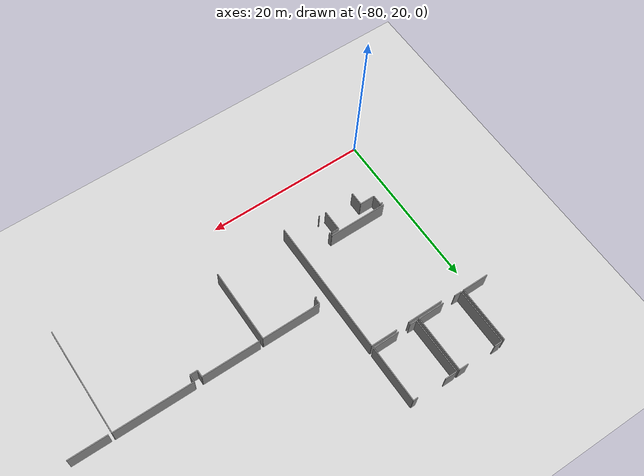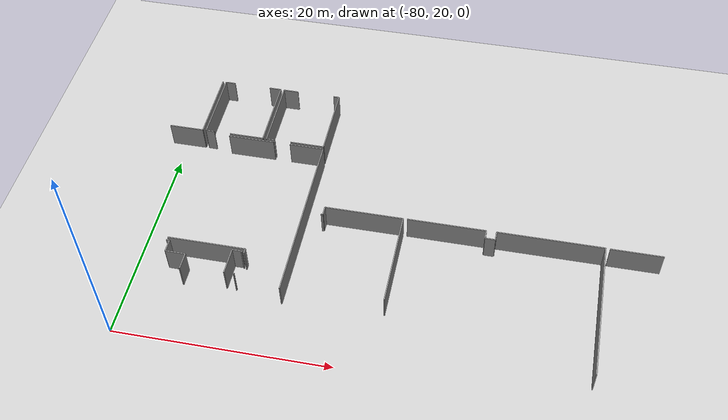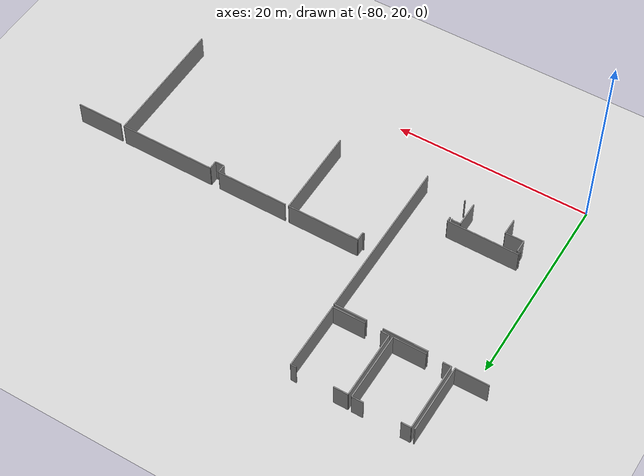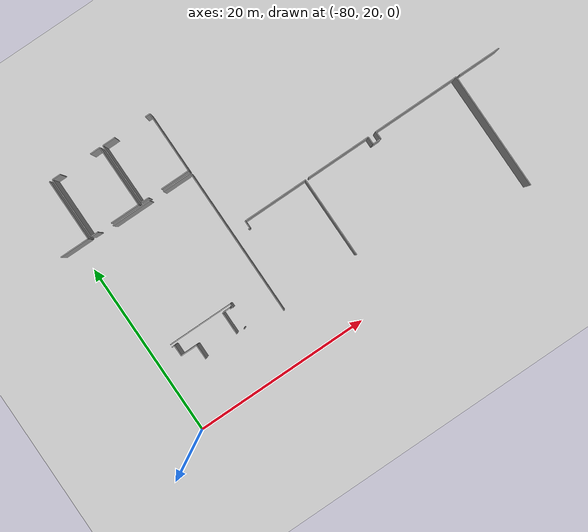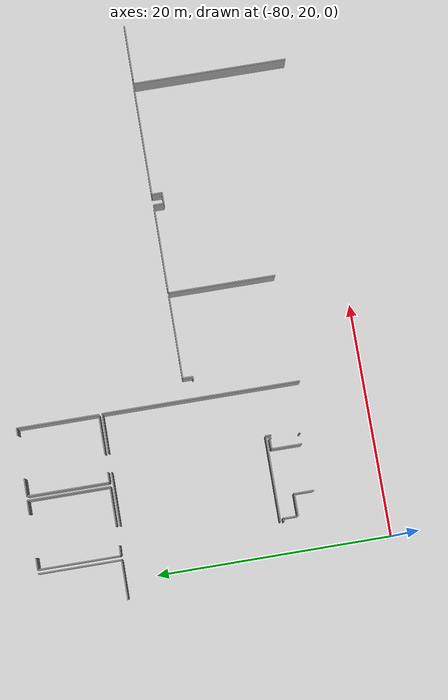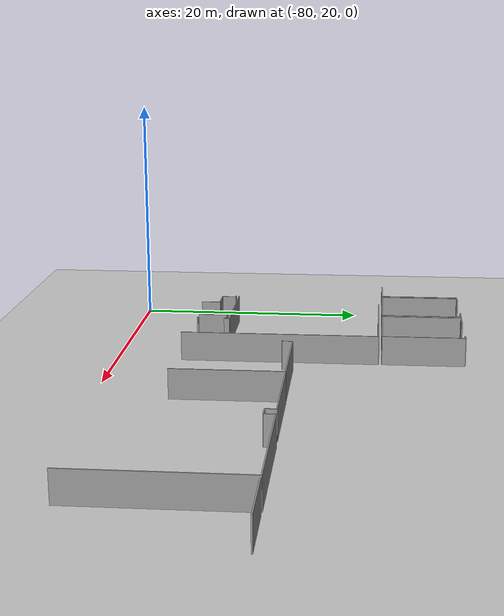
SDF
<sdf version="1.6">
 <world name="default">
  <model name="ground_plane">
   <static>1</static>
   <link name="link">
    <collision name="collision">
     <geometry><plane><normal>0 0 1</normal><size>100 100</size></plane></geometry>
     <surface><friction><ode><mu>100</mu><mu2>50</mu2></ode></friction></surface>
    </collision>
    <visual name="visual">
     <cast_shadows>0</cast_shadows>
     <geometry><plane><normal>0 0 1</normal><size>100 100</size></plane></geometry>
     <material>
      <script><uri>file://media/materials/scripts/gazebo.material</uri><name>Gazebo/Grey</name></script>
     </material>
    </visual>
   </link>
  </model>
  <model name="0510035740_A_40_1_103">
   <static>1</static>
   <link name="Wall_10">
    <collision name="Wall_10_Collision">
     <geometry><box><size>6.99428310375 0.1 2.5</size></box></geometry>
     <pose>3.49714155187 0 1.25 0 0 0</pose>
    </collision>
    <visual name="Wall_10_Visual">
     <pose>3.49714155187 0 1.25 0 0 0</pose>
     <geometry><box><size>6.99428310375 0.1 2.5</size></box></geometry>
     <material>
      <script><uri>file://media/materials/scripts/gazebo.material</uri><name>Gazebo/Grey</name></script>
      <ambient>1 1 1 1</ambient>
     </material>
    </visual>
    <pose>15.7024929728 -0.0164971478969 0 0 0 -1.57079632679</pose>
   </link>
   <link name="Wall_11">
    <collision name="Wall_11_Collision">
     <geometry><box><size>3.33369288656 0.1 2.5</size></box></geometry>
     <pose>1.66684644328 0 1.25 0 0 0</pose>
    </collision>
    <visual name="Wall_11_Visual">
     <pose>1.66684644328 0 1.25 0 0 0</pose>
     <geometry><box><size>3.33369288656 0.1 2.5</size></box></geometry>
     <material>
      <script><uri>file://media/materials/scripts/gazebo.material</uri><name>Gazebo/Grey</name></script>
      <ambient>1 1 1 1</ambient>
     </material>
    </visual>
    <pose>15.7024929728 -7.01078025164 0 0 0 3.14159265359</pose>
   </link>
   <link name="Wall_13">
    <collision name="Wall_13_Collision">
     <geometry><box><size>6.97474032855 0.1 2.5</size></box></geometry>
     <pose>3.48737016427 0 1.25 0 0 0</pose>
    </collision>
    <visual name="Wall_13_Visual">
     <pose>3.48737016427 0 1.25 0 0 0</pose>
     <geometry><box><size>6.97474032855 0.1 2.5</size></box></geometry>
     <material>
      <script><uri>file://media/materials/scripts/gazebo.material</uri><name>Gazebo/Grey</name></script>
      <ambient>1 1 1 1</ambient>
     </material>
    </visual>
    <pose>16.0415728127 -6.99504451057 0 0 0 1.57079632679</pose>
   </link>
   <link name="Wall_14">
    <collision name="Wall_14_Collision">
     <geometry><box><size>0.975108341846 0.1 2.5</size></box></geometry>
     <pose>0.487554170923 0 1.25 0 0 0</pose>
    </collision>
    <visual name="Wall_14_Visual">
     <pose>0.487554170923 0 1.25 0 0 0</pose>
     <geometry><box><size>0.975108341846 0.1 2.5</size></box></geometry>
     <material>
      <script><uri>file://media/materials/scripts/gazebo.material</uri><name>Gazebo/Grey</name></script>
      <ambient>1 1 1 1</ambient>
     </material>
    </visual>
    <pose>16.0415728127 -0.020304182027 0 0 0 0.0</pose>
   </link>
   <link name="Wall_15">
    <collision name="Wall_15_Collision">
     <geometry><box><size>1.15429274823 0.1 2.5</size></box></geometry>
     <pose>0.577146374117 0 1.25 0 0 0</pose>
    </collision>
    <visual name="Wall_15_Visual">
     <pose>0.577146374117 0 1.25 0 0 0</pose>
     <geometry><box><size>1.15429274823 0.1 2.5</size></box></geometry>
     <material>
      <script><uri>file://media/materials/scripts/gazebo.material</uri><name>Gazebo/Grey</name></script>
      <ambient>1 1 1 1</ambient>
     </material>
    </visual>
    <pose>20.6800631968 -0.020304182027 0 0 0 0.0</pose>
   </link>
   <link name="Wall_16">
    <collision name="Wall_16_Collision">
     <geometry><box><size>6.99428310375 0.1 2.5</size></box></geometry>
     <pose>3.49714155187 0 1.25 0 0 0</pose>
    </collision>
    <visual name="Wall_16_Visual">
     <pose>3.49714155187 0 1.25 0 0 0</pose>
     <geometry><box><size>6.99428310375 0.1 2.5</size></box></geometry>
     <material>
      <script><uri>file://media/materials/scripts/gazebo.material</uri><name>Gazebo/Grey</name></script>
      <ambient>1 1 1 1</ambient>
     </material>
    </visual>
    <pose>21.834355945 -0.020304182027 0 0 0 -1.57079632679</pose>
   </link>
   <link name="Wall_17">
    <collision name="Wall_17_Collision">
     <geometry><box><size>3.32760163195 0.1 2.5</size></box></geometry>
     <pose>1.66380081597 0 1.25 0 0 0</pose>
    </collision>
    <visual name="Wall_17_Visual">
     <pose>1.66380081597 0 1.25 0 0 0</pose>
     <geometry><box><size>3.32760163195 0.1 2.5</size></box></geometry>
     <material>
      <script><uri>file://media/materials/scripts/gazebo.material</uri><name>Gazebo/Grey</name></script>
      <ambient>1 1 1 1</ambient>
     </material>
    </visual>
    <pose>21.834355945 -7.01458728578 0 0 0 3.14159265359</pose>
   </link>
   <link name="Wall_18">
    <collision name="Wall_18_Collision">
     <geometry><box><size>0.85934294708 0.1 2.5</size></box></geometry>
     <pose>0.42967147354 0 1.25 0 0 0</pose>
    </collision>
    <visual name="Wall_18_Visual">
     <pose>0.42967147354 0 1.25 0 0 0</pose>
     <geometry><box><size>0.85934294708 0.1 2.5</size></box></geometry>
     <material>
      <script><uri>file://media/materials/scripts/gazebo.material</uri><name>Gazebo/Grey</name></script>
      <ambient>1 1 1 1</ambient>
     </material>
    </visual>
    <pose>16.9006935147 -7.01458728578 0 0 0 3.11884916082</pose>
   </link>
   <link name="Wall_19">
    <collision name="Wall_19_Collision">
     <geometry><box><size>6.96636485346 0.1 2.5</size></box></geometry>
     <pose>3.48318242673 0 1.25 0 0 0</pose>
    </collision>
    <visual name="Wall_19_Visual">
     <pose>3.48318242673 0 1.25 0 0 0</pose>
     <geometry><box><size>6.96636485346 0.1 2.5</size></box></geometry>
     <material>
      <script><uri>file://media/materials/scripts/gazebo.material</uri><name>Gazebo/Grey</name></script>
      <ambient>1 1 1 1</ambient>
     </material>
    </visual>
    <pose>22.1957703851 -7.00468899704 0 0 0 1.57079632679</pose>
   </link>
   <link name="Wall_20">
    <collision name="Wall_20_Collision">
     <geometry><box><size>1.47433741743 0.1 2.5</size></box></geometry>
     <pose>0.737168708717 0 1.25 0 0 0</pose>
    </collision>
    <visual name="Wall_20_Visual">
     <pose>0.737168708717 0 1.25 0 0 0</pose>
     <geometry><box><size>1.47433741743 0.1 2.5</size></box></geometry>
     <material>
      <script><uri>file://media/materials/scripts/gazebo.material</uri><name>Gazebo/Grey</name></script>
      <ambient>1 1 1 1</ambient>
     </material>
    </visual>
    <pose>22.1957703851 -0.0383241435759 0 0 0 0.0</pose>
   </link>
   <link name="Wall_21">
    <collision name="Wall_21_Collision">
     <geometry><box><size>0.564710062626 0.1 2.5</size></box></geometry>
     <pose>0.282355031313 0 1.25 0 0 0</pose>
    </collision>
    <visual name="Wall_21_Visual">
     <pose>0.282355031313 0 1.25 0 0 0</pose>
     <geometry><box><size>0.564710062626 0.1 2.5</size></box></geometry>
     <material>
      <script><uri>file://media/materials/scripts/gazebo.material</uri><name>Gazebo/Grey</name></script>
      <ambient>1 1 1 1</ambient>
     </material>
    </visual>
    <pose>27.3776514406 -0.0383241435759 0 0 0 0.0</pose>
   </link>
   <link name="Wall_22">
    <collision name="Wall_22_Collision">
     <geometry><box><size>6.98438481501 0.1 2.5</size></box></geometry>
     <pose>3.4921924075 0 1.25 0 0 0</pose>
    </collision>
    <visual name="Wall_22_Visual">
     <pose>3.4921924075 0 1.25 0 0 0</pose>
     <geometry><box><size>6.98438481501 0.1 2.5</size></box></geometry>
     <material>
      <script><uri>file://media/materials/scripts/gazebo.material</uri><name>Gazebo/Grey</name></script>
      <ambient>1 1 1 1</ambient>
     </material>
    </visual>
    <pose>27.9423615033 -0.0383241435759 0 0 0 -1.57079632679</pose>
   </link>
   <link name="Wall_23">
    <collision name="Wall_23_Collision">
     <geometry><box><size>3.30882026357 0.1 2.5</size></box></geometry>
     <pose>1.65441013179 0 1.25 0 0 0</pose>
    </collision>
    <visual name="Wall_23_Visual">
     <pose>1.65441013179 0 1.25 0 0 0</pose>
     <geometry><box><size>3.30882026357 0.1 2.5</size></box></geometry>
     <material>
      <script><uri>file://media/materials/scripts/gazebo.material</uri><name>Gazebo/Grey</name></script>
      <ambient>1 1 1 1</ambient>
     </material>
    </visual>
    <pose>27.9423615033 -7.02270895859 0 0 0 3.14159265359</pose>
   </link>
   <link name="Wall_24">
    <collision name="Wall_24_Collision">
     <geometry><box><size>0.869713296988 0.1 2.5</size></box></geometry>
     <pose>0.434856648494 0 1.25 0 0 0</pose>
    </collision>
    <visual name="Wall_24_Visual">
     <pose>0.434856648494 0 1.25 0 0 0</pose>
     <geometry><box><size>0.869713296988 0.1 2.5</size></box></geometry>
     <material>
      <script><uri>file://media/materials/scripts/gazebo.material</uri><name>Gazebo/Grey</name></script>
      <ambient>1 1 1 1</ambient>
     </material>
    </visual>
    <pose>23.0652969804 -7.02270895859 0 0 0 3.12087174341</pose>
   </link>
   <link name="Wall_49">
    <collision name="Wall_49_Collision">
     <geometry><box><size>0.307354555434 0.1 2.5</size></box></geometry>
     <pose>0.153677277717 0 1.25 0 0 0</pose>
    </collision>
    <visual name="Wall_49_Visual">
     <pose>0.153677277717 0 1.25 0 0 0</pose>
     <geometry><box><size>0.307354555434 0.1 2.5</size></box></geometry>
     <material>
      <script><uri>file://media/materials/scripts/gazebo.material</uri><name>Gazebo/Grey</name></script>
      <ambient>1 1 1 1</ambient>
     </material>
    </visual>
    <pose>16.5557762225 -20.8417352462 0 0 0 0.0</pose>
   </link>
   <link name="Wall_50">
    <collision name="Wall_50_Collision">
     <geometry><box><size>1.23576327862 0.1 2.5</size></box></geometry>
     <pose>0.617881639309 0 1.25 0 0 0</pose>
    </collision>
    <visual name="Wall_50_Visual">
     <pose>0.617881639309 0 1.25 0 0 0</pose>
     <geometry><box><size>1.23576327862 0.1 2.5</size></box></geometry>
     <material>
      <script><uri>file://media/materials/scripts/gazebo.material</uri><name>Gazebo/Grey</name></script>
      <ambient>1 1 1 1</ambient>
     </material>
    </visual>
    <pose>16.863130778 -20.8417352462 0 0 0 -1.57079632679</pose>
   </link>
   <link name="Wall_51">
    <collision name="Wall_51_Collision">
     <geometry><box><size>1.86950756014 0.1 2.5</size></box></geometry>
     <pose>0.934753780068 0 1.25 0 0 0</pose>
    </collision>
    <visual name="Wall_51_Visual">
     <pose>0.934753780068 0 1.25 0 0 0</pose>
     <geometry><box><size>1.86950756014 0.1 2.5</size></box></geometry>
     <material>
      <script><uri>file://media/materials/scripts/gazebo.material</uri><name>Gazebo/Grey</name></script>
      <ambient>1 1 1 1</ambient>
     </material>
    </visual>
    <pose>16.863130778 -22.0774985248 0 0 0 0.0</pose>
   </link>
   <link name="Wall_52">
    <collision name="Wall_52_Collision">
     <geometry><box><size>1.65631364885 0.1 2.5</size></box></geometry>
     <pose>0.828156824426 0 1.25 0 0 0</pose>
    </collision>
    <visual name="Wall_52_Visual">
     <pose>0.828156824426 0 1.25 0 0 0</pose>
     <geometry><box><size>1.65631364885 0.1 2.5</size></box></geometry>
     <material>
      <script><uri>file://media/materials/scripts/gazebo.material</uri><name>Gazebo/Grey</name></script>
      <ambient>1 1 1 1</ambient>
     </material>
    </visual>
    <pose>18.7326383381 -22.0774985248 0 0 0 -1.57079632679</pose>
   </link>
   <link name="Wall_61">
    <collision name="Wall_61_Collision">
     <geometry><box><size>2.56822522414 0.1 2.5</size></box></geometry>
     <pose>1.28411261207 0 1.25 0 0 0</pose>
    </collision>
    <visual name="Wall_61_Visual">
     <pose>1.28411261207 0 1.25 0 0 0</pose>
     <geometry><box><size>2.56822522414 0.1 2.5</size></box></geometry>
     <material>
      <script><uri>file://media/materials/scripts/gazebo.material</uri><name>Gazebo/Grey</name></script>
      <ambient>1 1 1 1</ambient>
     </material>
    </visual>
    <pose>22.7216486996 -23.414275109 0 0 0 1.57079632679</pose>
   </link>
   <link name="Wall_62">
    <collision name="Wall_62_Collision">
     <geometry><box><size>0.902013286549 0.1 2.5</size></box></geometry>
     <pose>0.451006643275 0 1.25 0 0 0</pose>
    </collision>
    <visual name="Wall_62_Visual">
     <pose>0.451006643275 0 1.25 0 0 0</pose>
     <geometry><box><size>0.902013286549 0.1 2.5</size></box></geometry>
     <material>
      <script><uri>file://media/materials/scripts/gazebo.material</uri><name>Gazebo/Grey</name></script>
      <ambient>1 1 1 1</ambient>
     </material>
    </visual>
    <pose>22.7216486996 -20.8460498848 0 0 0 0.0</pose>
   </link>
   <link name="Wall_63">
    <collision name="Wall_63_Collision">
     <geometry><box><size>0.137053228682 0.1 2.5</size></box></geometry>
     <pose>0.0685266143411 0 1.25 0 0 0</pose>
    </collision>
    <visual name="Wall_63_Visual">
     <pose>0.0685266143411 0 1.25 0 0 0</pose>
     <geometry><box><size>0.137053228682 0.1 2.5</size></box></geometry>
     <material>
      <script><uri>file://media/materials/scripts/gazebo.material</uri><name>Gazebo/Grey</name></script>
      <ambient>1 1 1 1</ambient>
     </material>
    </visual>
    <pose>23.6236619861 -20.8460498848 0 0 0 -1.57079632679</pose>
   </link>
   <link name="Wall_64">
    <collision name="Wall_64_Collision">
     <geometry><box><size>0.109642582946 0.1 2.5</size></box></geometry>
     <pose>0.0548212914729 0 1.25 0 0 0</pose>
    </collision>
    <visual name="Wall_64_Visual">
     <pose>0.0548212914729 0 1.25 0 0 0</pose>
     <geometry><box><size>0.109642582946 0.1 2.5</size></box></geometry>
     <material>
      <script><uri>file://media/materials/scripts/gazebo.material</uri><name>Gazebo/Grey</name></script>
      <ambient>1 1 1 1</ambient>
     </material>
    </visual>
    <pose>23.6236619861 -23.3432104719 0 0 0 -1.57079632679</pose>
   </link>
   <link name="Wall_72">
    <collision name="Wall_72_Collision">
     <geometry><box><size>4.50499038724 0.1 2.5</size></box></geometry>
     <pose>2.25249519362 0 1.25 0 0 0</pose>
    </collision>
    <visual name="Wall_72_Visual">
     <pose>2.25249519362 0 1.25 0 0 0</pose>
     <geometry><box><size>4.50499038724 0.1 2.5</size></box></geometry>
     <material>
      <script><uri>file://media/materials/scripts/gazebo.material</uri><name>Gazebo/Grey</name></script>
      <ambient>1 1 1 1</ambient>
     </material>
    </visual>
    <pose>18.5103075449 -7.31991142301 0 0 0 0.0</pose>
   </link>
   <link name="Wall_73">
    <collision name="Wall_73_Collision">
     <geometry><box><size>3.32303319099 0.1 2.5</size></box></geometry>
     <pose>1.6615165955 0 1.25 0 0 0</pose>
    </collision>
    <visual name="Wall_73_Visual">
     <pose>1.6615165955 0 1.25 0 0 0</pose>
     <geometry><box><size>3.32303319099 0.1 2.5</size></box></geometry>
     <material>
      <script><uri>file://media/materials/scripts/gazebo.material</uri><name>Gazebo/Grey</name></script>
      <ambient>1 1 1 1</ambient>
     </material>
    </visual>
    <pose>24.6497845853 -7.31991142301 0 0 0 0.0</pose>
   </link>
   <link name="Wall_74">
    <collision name="Wall_74_Collision">
     <geometry><box><size>16.8374967482 0.1 2.5</size></box></geometry>
     <pose>8.41874837408 0 1.25 0 0 0</pose>
    </collision>
    <visual name="Wall_74_Visual">
     <pose>8.41874837408 0 1.25 0 0 0</pose>
     <geometry><box><size>16.8374967482 0.1 2.5</size></box></geometry>
     <material>
      <script><uri>file://media/materials/scripts/gazebo.material</uri><name>Gazebo/Grey</name></script>
      <ambient>1 1 1 1</ambient>
     </material>
    </visual>
    <pose>27.9728177763 -7.31991142301 0 0 0 -1.57079632679</pose>
   </link>
   <link name="Wall_84">
    <collision name="Wall_84_Collision">
     <geometry><box><size>0.4702956162 0.1 2.5</size></box></geometry>
     <pose>0.2351478081 0 1.25 0 0 0</pose>
    </collision>
    <visual name="Wall_84_Visual">
     <pose>0.2351478081 0 1.25 0 0 0</pose>
     <geometry><box><size>0.4702956162 0.1 2.5</size></box></geometry>
     <material>
      <script><uri>file://media/materials/scripts/gazebo.material</uri><name>Gazebo/Grey</name></script>
      <ambient>1 1 1 1</ambient>
     </material>
    </visual>
    <pose>23.8792408774 -21.0171126184 0 0 0 1.57079632679</pose>
   </link>
   <link name="Wall_85">
    <collision name="Wall_85_Collision">
     <geometry><box><size>7.29199317272 0.1 2.5</size></box></geometry>
     <pose>3.64599658636 0 1.25 0 0 0</pose>
    </collision>
    <visual name="Wall_85_Visual">
     <pose>3.64599658636 0 1.25 0 0 0</pose>
     <geometry><box><size>7.29199317272 0.1 2.5</size></box></geometry>
     <material>
      <script><uri>file://media/materials/scripts/gazebo.material</uri><name>Gazebo/Grey</name></script>
      <ambient>1 1 1 1</ambient>
     </material>
    </visual>
    <pose>23.8792408774 -20.5468170022 0 0 0 3.14159265359</pose>
   </link>
   <link name="Wall_121">
    <collision name="Wall_121_Collision">
     <geometry><box><size>0.184768056446 0.1 2.5</size></box></geometry>
     <pose>0.0923840282228 0 1.25 0 0 0</pose>
    </collision>
    <visual name="Wall_121_Visual">
     <pose>0.0923840282228 0 1.25 0 0 0</pose>
     <geometry><box><size>0.184768056446 0.1 2.5</size></box></geometry>
     <material>
      <script><uri>file://media/materials/scripts/gazebo.material</uri><name>Gazebo/Grey</name></script>
      <ambient>1 1 1 1</ambient>
     </material>
    </visual>
    <pose>29.6288776229 -15.3195053394 0 0 0 0.0</pose>
   </link>
   <link name="Wall_122">
    <collision name="Wall_122_Collision">
     <geometry><box><size>0.858613097466 0.1 2.5</size></box></geometry>
     <pose>0.429306548733 0 1.25 0 0 0</pose>
    </collision>
    <visual name="Wall_122_Visual">
     <pose>0.429306548733 0 1.25 0 0 0</pose>
     <geometry><box><size>0.858613097466 0.1 2.5</size></box></geometry>
     <material>
      <script><uri>file://media/materials/scripts/gazebo.material</uri><name>Gazebo/Grey</name></script>
      <ambient>1 1 1 1</ambient>
     </material>
    </visual>
    <pose>29.8136456793 -15.3195053394 0 0 0 1.57079632679</pose>
   </link>
   <link name="Wall_123">
    <collision name="Wall_123_Collision">
     <geometry><box><size>7.37524031903 0.1 2.5</size></box></geometry>
     <pose>3.68762015951 0 1.25 0 0 0</pose>
    </collision>
    <visual name="Wall_123_Visual">
     <pose>3.68762015951 0 1.25 0 0 0</pose>
     <geometry><box><size>7.37524031903 0.1 2.5</size></box></geometry>
     <material>
      <script><uri>file://media/materials/scripts/gazebo.material</uri><name>Gazebo/Grey</name></script>
      <ambient>1 1 1 1</ambient>
     </material>
    </visual>
    <pose>29.8136456793 -14.4608922419 0 0 0 0.0</pose>
   </link>
   <link name="Wall_124">
    <collision name="Wall_124_Collision">
     <geometry><box><size>9.16657677836 0.1 2.5</size></box></geometry>
     <pose>4.58328838918 0 1.25 0 0 0</pose>
    </collision>
    <visual name="Wall_124_Visual">
     <pose>4.58328838918 0 1.25 0 0 0</pose>
     <geometry><box><size>9.16657677836 0.1 2.5</size></box></geometry>
     <material>
      <script><uri>file://media/materials/scripts/gazebo.material</uri><name>Gazebo/Grey</name></script>
      <ambient>1 1 1 1</ambient>
     </material>
    </visual>
    <pose>37.1888859984 -14.4608922419 0 0 0 -1.57079632679</pose>
   </link>
   <link name="Wall_129">
    <collision name="Wall_129_Collision">
     <geometry><box><size>7.32143423666 0.1 2.5</size></box></geometry>
     <pose>3.66071711833 0 1.25 0 0 0</pose>
    </collision>
    <visual name="Wall_129_Visual">
     <pose>3.66071711833 0 1.25 0 0 0</pose>
     <geometry><box><size>7.32143423666 0.1 2.5</size></box></geometry>
     <material>
      <script><uri>file://media/materials/scripts/gazebo.material</uri><name>Gazebo/Grey</name></script>
      <ambient>1 1 1 1</ambient>
     </material>
    </visual>
    <pose>37.5731426432 -14.4469331168 0 0 0 0.0</pose>
   </link>
   <link name="Wall_130">
    <collision name="Wall_130_Collision">
     <geometry><box><size>0.868257583929 0.1 2.5</size></box></geometry>
     <pose>0.434128791965 0 1.25 0 0 0</pose>
    </collision>
    <visual name="Wall_130_Visual">
     <pose>0.434128791965 0 1.25 0 0 0</pose>
     <geometry><box><size>0.868257583929 0.1 2.5</size></box></geometry>
     <material>
      <script><uri>file://media/materials/scripts/gazebo.material</uri><name>Gazebo/Grey</name></script>
      <ambient>1 1 1 1</ambient>
     </material>
    </visual>
    <pose>44.8945768799 -14.4469331168 0 0 0 -1.57079632679</pose>
   </link>
   <link name="Wall_131">
    <collision name="Wall_131_Collision">
     <geometry><box><size>0.944652068806 0.1 2.5</size></box></geometry>
     <pose>0.472326034403 0 1.25 0 0 0</pose>
    </collision>
    <visual name="Wall_131_Visual">
     <pose>0.472326034403 0 1.25 0 0 0</pose>
     <geometry><box><size>0.944652068806 0.1 2.5</size></box></geometry>
     <material>
      <script><uri>file://media/materials/scripts/gazebo.material</uri><name>Gazebo/Grey</name></script>
      <ambient>1 1 1 1</ambient>
     </material>
    </visual>
    <pose>44.8945768799 -15.3151907007 0 0 0 0.0</pose>
   </link>
   <link name="Wall_132">
    <collision name="Wall_132_Collision">
     <geometry><box><size>0.887546556855 0.1 2.5</size></box></geometry>
     <pose>0.443773278427 0 1.25 0 0 0</pose>
    </collision>
    <visual name="Wall_132_Visual">
     <pose>0.443773278427 0 1.25 0 0 0</pose>
     <geometry><box><size>0.887546556855 0.1 2.5</size></box></geometry>
     <material>
      <script><uri>file://media/materials/scripts/gazebo.material</uri><name>Gazebo/Grey</name></script>
      <ambient>1 1 1 1</ambient>
     </material>
    </visual>
    <pose>45.8392289487 -15.3151907007 0 0 0 1.57079632679</pose>
   </link>
   <link name="Wall_133">
    <collision name="Wall_133_Collision">
     <geometry><box><size>9.87392371973 0.1 2.5</size></box></geometry>
     <pose>4.93696185986 0 1.25 0 0 0</pose>
    </collision>
    <visual name="Wall_133_Visual">
     <pose>4.93696185986 0 1.25 0 0 0</pose>
     <geometry><box><size>9.87392371973 0.1 2.5</size></box></geometry>
     <material>
      <script><uri>file://media/materials/scripts/gazebo.material</uri><name>Gazebo/Grey</name></script>
      <ambient>1 1 1 1</ambient>
     </material>
    </visual>
    <pose>45.8392289487 -14.4276441438 0 0 0 0.0</pose>
   </link>
   <link name="Wall_134">
    <collision name="Wall_134_Collision">
     <geometry><box><size>13.2964474027 0.1 2.5</size></box></geometry>
     <pose>6.64822370133 0 1.25 0 0 0</pose>
    </collision>
    <visual name="Wall_134_Visual">
     <pose>6.64822370133 0 1.25 0 0 0</pose>
     <geometry><box><size>13.2964474027 0.1 2.5</size></box></geometry>
     <material>
      <script><uri>file://media/materials/scripts/gazebo.material</uri><name>Gazebo/Grey</name></script>
      <ambient>1 1 1 1</ambient>
     </material>
    </visual>
    <pose>55.7131526684 -14.4276441438 0 0 0 -1.57079632679</pose>
   </link>
   <link name="Wall_174">
    <collision name="Wall_174_Collision">
     <geometry><box><size>4.82452745189 0.1 2.5</size></box></geometry>
     <pose>2.41226372594 0 1.25 0 0 0</pose>
    </collision>
    <visual name="Wall_174_Visual">
     <pose>2.41226372594 0 1.25 0 0 0</pose>
     <geometry><box><size>4.82452745189 0.1 2.5</size></box></geometry>
     <material>
      <script><uri>file://media/materials/scripts/gazebo.material</uri><name>Gazebo/Grey</name></script>
      <ambient>1 1 1 1</ambient>
     </material>
    </visual>
    <pose>56.110099427 -14.461907451 0 0 0 0.0</pose>
   </link>
   <pose>-93.95 49.6557238758 0 0 0 0</pose>
  </model>
 </world>
</sdf>
